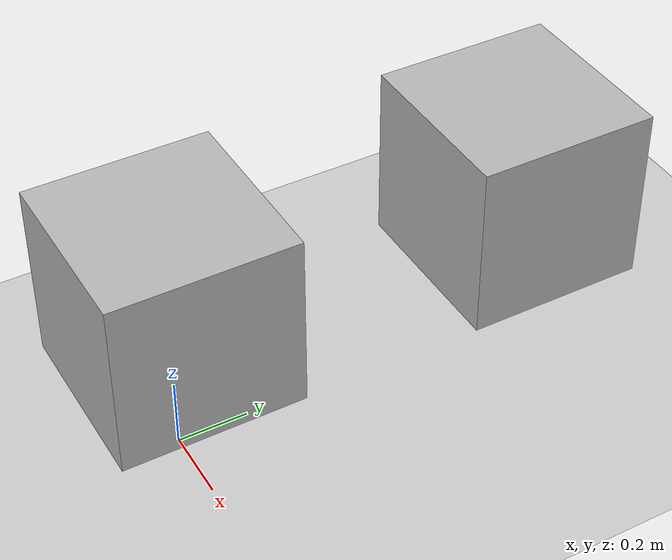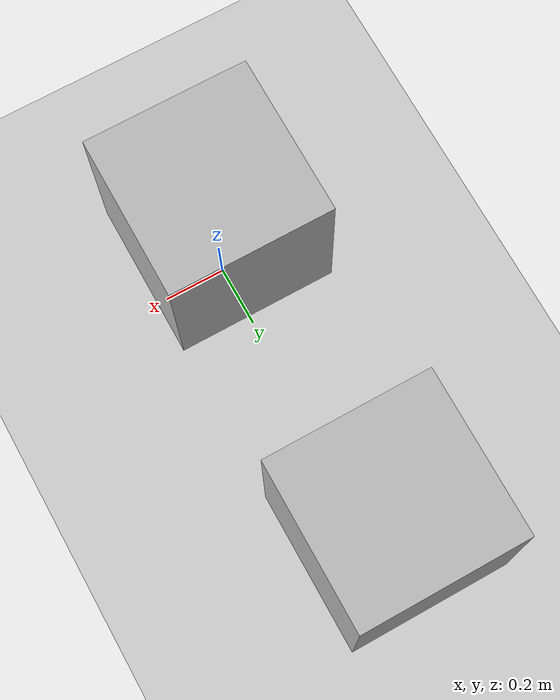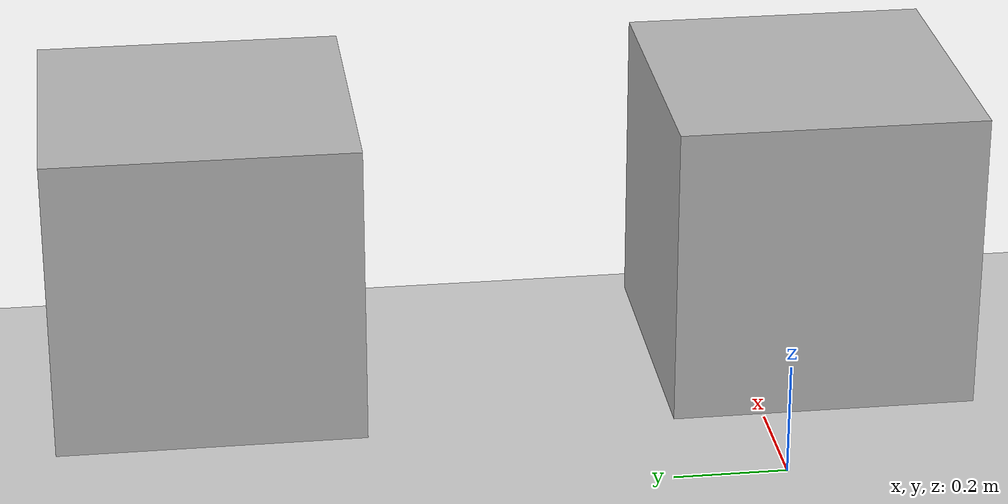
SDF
<?xml version="1.0"?>
<sdf version="1.4">
  <world name="animated_box_world">

    <!-- Ground Plane -->
    <include>
      <uri>model://ground_plane</uri>
    </include>

    <include>
      <uri>model://sun</uri>
    </include>

    <model name="box">
      <pose>0 0 0.5 0 0 0</pose>
      <link name="link1">
        <collision name="collision">
          <geometry>
            <box>
              <size>1 1 1</size>
            </box>
          </geometry>
        </collision>

        <visual name="visual">
          <pose>0 1 0 0 0 0</pose>
          <geometry>
            <box>
              <size>.5 .5 .5 </size>
            </box>
          </geometry>
        </visual>
      </link>

      <link name="link2">
        <collision name="collision2">
          <geometry>
            <box>
              <size>1 1 1</size>
            </box>
          </geometry>
        </collision>

        <visual name="visual2">
          <geometry>
            <box>
              <size>.5 .5 .5 </size>
            </box>
          </geometry>
        </visual>
      </link>
      <joint type = "static" name = "join1">
        <parent>link1</parent>
        <child>link2</child>
        <pose>0 -1 0 0 0 0</pose>
        </joint>
    </model>
  </world>
</sdf>
